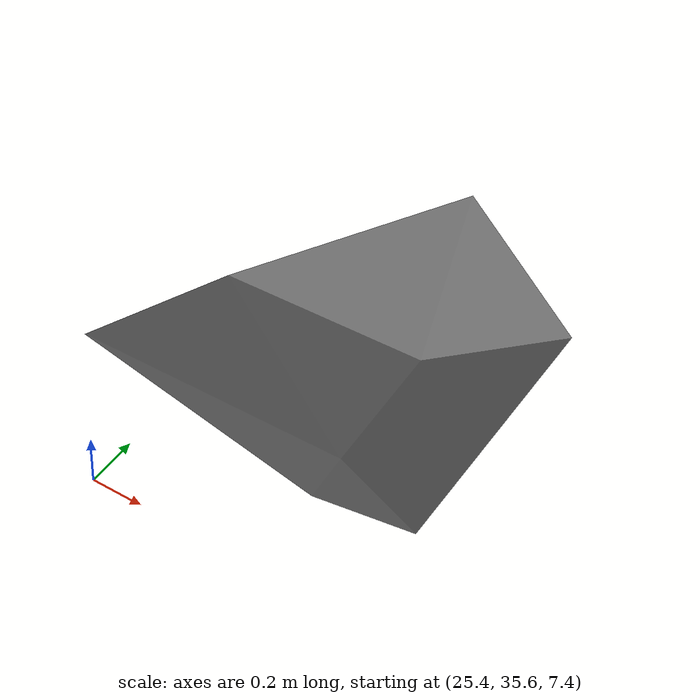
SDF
<sdf version="1.8">
 <model name="blue_mountains">
  <static>true</static>
  <link name="forest_22_23">
   <collision name="tree_212_trunk">
    <pose>26.17512 35.82392 5.798192 0 0 -1.299978</pose>
    <geometry><cylinder><radius>0.05569372</radius><length>3.544023</length></cylinder></geometry>
   </collision>
   <collision name="plant_212_crown_0">
    <pose>26.16916 35.84538 4.026181 0 0 -1.299978</pose>
    <geometry>
     <mesh>
      <uri>model://blue_mountains/meshes/canopy_6_0.dae</uri>
      <scale>0.2227749 0.2227749 0.2612376</scale>
     </mesh>
    </geometry>
   </collision>
   <collision name="plant_212_crown_1">
    <pose>26.16916 35.84538 4.026181 0 0 -1.299978</pose>
    <geometry>
     <mesh>
      <uri>model://blue_mountains/meshes/canopy_6_1.dae</uri>
      <scale>0.2227749 0.2227749 0.2612376</scale>
     </mesh>
    </geometry>
   </collision>
   <collision name="tree_286_trunk">
    <pose>29.71212 34.58313 4.189061 0 0 -2.061713</pose>
    <geometry><cylinder><radius>0.04205543</radius><length>2.102512</length></cylinder></geometry>
   </collision>
   <collision name="plant_286_crown_0">
    <pose>29.72005 34.59797 3.137805 0 0 -2.061713</pose>
    <geometry>
     <mesh>
      <uri>model://blue_mountains/meshes/canopy_1_0.dae</uri>
      <scale>0.1682217 0.1682217 0.1552932</scale>
     </mesh>
    </geometry>
   </collision>
   <collision name="plant_286_crown_1">
    <pose>29.72005 34.59797 3.137805 0 0 -2.061713</pose>
    <geometry>
     <mesh>
      <uri>model://blue_mountains/meshes/canopy_1_1.dae</uri>
      <scale>0.1682217 0.1682217 0.1552932</scale>
     </mesh>
    </geometry>
   </collision>
   <collision name="plant_508_crown_0">
    <pose>23.5262 35.47313 5.321859 0 0 0</pose>
    <geometry>
     <mesh>
      <uri>model://blue_mountains/meshes/canopy_17_0.dae</uri>
      <scale>0.07575656 0.07575656 0.06926315</scale>
     </mesh>
    </geometry>
   </collision>
   <collision name="plant_508_crown_1">
    <pose>23.5262 35.47313 5.321859 0 0 0</pose>
    <geometry>
     <mesh>
      <uri>model://blue_mountains/meshes/canopy_17_1.dae</uri>
      <scale>0.07575656 0.07575656 0.06926315</scale>
     </mesh>
    </geometry>
   </collision>
   <collision name="plant_509_crown_0">
    <pose>25.23534 36.08177 4.6944 0 0 0</pose>
    <geometry>
     <mesh>
      <uri>model://blue_mountains/meshes/canopy_15_0.dae</uri>
      <scale>0.07575656 0.07575656 0.06926315</scale>
     </mesh>
    </geometry>
   </collision>
   <collision name="plant_509_crown_1">
    <pose>25.23534 36.08177 4.6944 0 0 0</pose>
    <geometry>
     <mesh>
      <uri>model://blue_mountains/meshes/canopy_15_1.dae</uri>
      <scale>0.07575656 0.07575656 0.06926315</scale>
     </mesh>
    </geometry>
   </collision>
   <collision name="plant_747_crown_0">
    <pose>29.18143 30.86106 22.881 0 0 -1.975</pose>
    <geometry>
     <mesh>
      <uri>model://blue_mountains/meshes/canopy_10_0.dae</uri>
      <scale>0.03990971 0.03990971 0.028735</scale>
     </mesh>
    </geometry>
   </collision>
   <collision name="plant_747_crown_1">
    <pose>29.18143 30.86106 22.881 0 0 -1.975</pose>
    <geometry>
     <mesh>
      <uri>model://blue_mountains/meshes/canopy_10_1.dae</uri>
      <scale>0.03990971 0.03990971 0.028735</scale>
     </mesh>
    </geometry>
   </collision>
   <collision name="plant_758_crown_0">
    <pose>27.91028 32.0326 15.73824 0 0 1.797869</pose>
    <geometry>
     <mesh>
      <uri>model://blue_mountains/meshes/canopy_12_0.dae</uri>
      <scale>0.05852661 0.05852661 0.04213916</scale>
     </mesh>
    </geometry>
   </collision>
   <collision name="plant_758_crown_1">
    <pose>27.91028 32.0326 15.73824 0 0 1.797869</pose>
    <geometry>
     <mesh>
      <uri>model://blue_mountains/meshes/canopy_12_1.dae</uri>
      <scale>0.05852661 0.05852661 0.04213916</scale>
     </mesh>
    </geometry>
   </collision>
   <collision name="plant_759_crown_0">
    <pose>24.58041 30.78548 15.73824 0 0 -0.9606831</pose>
    <geometry>
     <mesh>
      <uri>model://blue_mountains/meshes/canopy_13_0.dae</uri>
      <scale>0.06262851 0.06262851 0.04509252</scale>
     </mesh>
    </geometry>
   </collision>
   <collision name="plant_759_crown_1">
    <pose>24.58041 30.78548 15.73824 0 0 -0.9606831</pose>
    <geometry>
     <mesh>
      <uri>model://blue_mountains/meshes/canopy_13_1.dae</uri>
      <scale>0.06262851 0.06262851 0.04509252</scale>
     </mesh>
    </geometry>
   </collision>
   <collision name="plant_761_crown_0">
    <pose>27.69383 32.0326 18.33561 0 0 0.3316886</pose>
    <geometry>
     <mesh>
      <uri>model://blue_mountains/meshes/canopy_16_0.dae</uri>
      <scale>0.0434915 0.0434915 0.03131388</scale>
     </mesh>
    </geometry>
   </collision>
   <collision name="plant_761_crown_1">
    <pose>27.69383 32.0326 18.33561 0 0 0.3316886</pose>
    <geometry>
     <mesh>
      <uri>model://blue_mountains/meshes/canopy_16_1.dae</uri>
      <scale>0.0434915 0.0434915 0.03131388</scale>
     </mesh>
    </geometry>
   </collision>
   <collision name="plant_763_crown_0">
    <pose>24.64491 30.39496 20.71653 0 0 0.7904263</pose>
    <geometry>
     <mesh>
      <uri>model://blue_mountains/meshes/canopy_15_0.dae</uri>
      <scale>0.06741365 0.06741365 0.04853782</scale>
     </mesh>
    </geometry>
   </collision>
   <collision name="plant_763_crown_1">
    <pose>24.64491 30.39496 20.71653 0 0 0.7904263</pose>
    <geometry>
     <mesh>
      <uri>model://blue_mountains/meshes/canopy_15_1.dae</uri>
      <scale>0.06741365 0.06741365 0.04853782</scale>
     </mesh>
    </geometry>
   </collision>
   <collision name="plant_765_crown_0">
    <pose>29.7338 31.70087 21.79876 0 0 0.9896924</pose>
    <geometry>
     <mesh>
      <uri>model://blue_mountains/meshes/canopy_10_0.dae</uri>
      <scale>0.06028318 0.06028318 0.04340389</scale>
     </mesh>
    </geometry>
   </collision>
   <collision name="plant_765_crown_1">
    <pose>29.7338 31.70087 21.79876 0 0 0.9896924</pose>
    <geometry>
     <mesh>
      <uri>model://blue_mountains/meshes/canopy_10_1.dae</uri>
      <scale>0.06028318 0.06028318 0.04340389</scale>
     </mesh>
    </geometry>
   </collision>
   <collision name="plant_768_crown_0">
    <pose>24.93733 30.6553 16.82048 0 0 -2.264173</pose>
    <geometry>
     <mesh>
      <uri>model://blue_mountains/meshes/canopy_13_0.dae</uri>
      <scale>0.03739824 0.03739824 0.02692674</scale>
     </mesh>
    </geometry>
   </collision>
   <collision name="plant_768_crown_1">
    <pose>24.93733 30.6553 16.82048 0 0 -2.264173</pose>
    <geometry>
     <mesh>
      <uri>model://blue_mountains/meshes/canopy_13_1.dae</uri>
      <scale>0.03739824 0.03739824 0.02692674</scale>
     </mesh>
    </geometry>
   </collision>
   <collision name="plant_769_crown_0">
    <pose>24.58041 30.78548 15.73824 0 0 2.405986</pose>
    <geometry>
     <mesh>
      <uri>model://blue_mountains/meshes/canopy_14_0.dae</uri>
      <scale>0.05892265 0.05892265 0.0424243</scale>
     </mesh>
    </geometry>
   </collision>
   <collision name="plant_769_crown_1">
    <pose>24.58041 30.78548 15.73824 0 0 2.405986</pose>
    <geometry>
     <mesh>
      <uri>model://blue_mountains/meshes/canopy_14_1.dae</uri>
      <scale>0.05892265 0.05892265 0.0424243</scale>
     </mesh>
    </geometry>
   </collision>
   <collision name="plant_771_crown_0">
    <pose>24.36396 30.78548 18.33561 0 0 -3.113648</pose>
    <geometry>
     <mesh>
      <uri>model://blue_mountains/meshes/canopy_17_0.dae</uri>
      <scale>0.04319181 0.04319181 0.03109811</scale>
     </mesh>
    </geometry>
   </collision>
   <collision name="plant_771_crown_1">
    <pose>24.36396 30.78548 18.33561 0 0 -3.113648</pose>
    <geometry>
     <mesh>
      <uri>model://blue_mountains/meshes/canopy_17_1.dae</uri>
      <scale>0.04319181 0.04319181 0.03109811</scale>
     </mesh>
    </geometry>
   </collision>
   <collision name="plant_777_crown_0">
    <pose>24.7474 30.26479 21.79876 0 0 1.098666</pose>
    <geometry>
     <mesh>
      <uri>model://blue_mountains/meshes/canopy_13_0.dae</uri>
      <scale>0.05782267 0.05782267 0.04163232</scale>
     </mesh>
    </geometry>
   </collision>
   <collision name="plant_777_crown_1">
    <pose>24.7474 30.26479 21.79876 0 0 1.098666</pose>
    <geometry>
     <mesh>
      <uri>model://blue_mountains/meshes/canopy_13_1.dae</uri>
      <scale>0.05782267 0.05782267 0.04163232</scale>
     </mesh>
    </geometry>
   </collision>
   <collision name="plant_779_crown_0">
    <pose>28.01105 31.84574 16.82048 0 0 -1.437006</pose>
    <geometry>
     <mesh>
      <uri>model://blue_mountains/meshes/canopy_16_0.dae</uri>
      <scale>0.05132083 0.05132083 0.036951</scale>
     </mesh>
    </geometry>
   </collision>
   <collision name="plant_779_crown_1">
    <pose>28.01105 31.84574 16.82048 0 0 -1.437006</pose>
    <geometry>
     <mesh>
      <uri>model://blue_mountains/meshes/canopy_16_1.dae</uri>
      <scale>0.05132083 0.05132083 0.036951</scale>
     </mesh>
    </geometry>
   </collision>
   <collision name="plant_782_crown_0">
    <pose>27.18076 31.28517 21.79876 0 0 -0.6048592</pose>
    <geometry>
     <mesh>
      <uri>model://blue_mountains/meshes/canopy_9_0.dae</uri>
      <scale>0.06758327 0.06758327 0.04865995</scale>
     </mesh>
    </geometry>
   </collision>
   <collision name="plant_782_crown_1">
    <pose>27.18076 31.28517 21.79876 0 0 -0.6048592</pose>
    <geometry>
     <mesh>
      <uri>model://blue_mountains/meshes/canopy_9_1.dae</uri>
      <scale>0.06758327 0.06758327 0.04865995</scale>
     </mesh>
    </geometry>
   </collision>
   <collision name="plant_787_crown_0">
    <pose>29.7338 31.70087 21.79876 0 0 -1.22128</pose>
    <geometry>
     <mesh>
      <uri>model://blue_mountains/meshes/canopy_14_0.dae</uri>
      <scale>0.0397453 0.0397453 0.02861661</scale>
     </mesh>
    </geometry>
   </collision>
   <collision name="plant_787_crown_1">
    <pose>29.7338 31.70087 21.79876 0 0 -1.22128</pose>
    <geometry>
     <mesh>
      <uri>model://blue_mountains/meshes/canopy_14_1.dae</uri>
      <scale>0.0397453 0.0397453 0.02861661</scale>
     </mesh>
    </geometry>
   </collision>
   <collision name="plant_788_crown_0">
    <pose>27.46249 31.47202 20.71653 0 0 2.204205</pose>
    <geometry>
     <mesh>
      <uri>model://blue_mountains/meshes/canopy_16_0.dae</uri>
      <scale>0.04044335 0.04044335 0.02911921</scale>
     </mesh>
    </geometry>
   </collision>
   <collision name="plant_788_crown_1">
    <pose>27.46249 31.47202 20.71653 0 0 2.204205</pose>
    <geometry>
     <mesh>
      <uri>model://blue_mountains/meshes/canopy_16_1.dae</uri>
      <scale>0.04044335 0.04044335 0.02911921</scale>
     </mesh>
    </geometry>
   </collision>
   <collision name="plant_792_crown_0">
    <pose>27.18076 31.28517 21.79876 0 0 -2.453559</pose>
    <geometry>
     <mesh>
      <uri>model://blue_mountains/meshes/canopy_10_0.dae</uri>
      <scale>0.04410311 0.04410311 0.03175424</scale>
     </mesh>
    </geometry>
   </collision>
   <collision name="plant_792_crown_1">
    <pose>27.18076 31.28517 21.79876 0 0 -2.453559</pose>
    <geometry>
     <mesh>
      <uri>model://blue_mountains/meshes/canopy_10_1.dae</uri>
      <scale>0.04410311 0.04410311 0.03175424</scale>
     </mesh>
    </geometry>
   </collision>
   <collision name="plant_794_crown_0">
    <pose>29.7338 31.70087 21.79876 0 0 2.602497</pose>
    <geometry>
     <mesh>
      <uri>model://blue_mountains/meshes/canopy_12_0.dae</uri>
      <scale>0.04548121 0.04548121 0.03274647</scale>
     </mesh>
    </geometry>
   </collision>
   <collision name="plant_794_crown_1">
    <pose>29.7338 31.70087 21.79876 0 0 2.602497</pose>
    <geometry>
     <mesh>
      <uri>model://blue_mountains/meshes/canopy_12_1.dae</uri>
      <scale>0.04548121 0.04548121 0.03274647</scale>
     </mesh>
    </geometry>
   </collision>
   <collision name="plant_795_crown_0">
    <pose>27.69383 32.0326 18.33561 0 0 -1.584611</pose>
    <geometry>
     <mesh>
      <uri>model://blue_mountains/meshes/canopy_13_0.dae</uri>
      <scale>0.04890751 0.04890751 0.03521341</scale>
     </mesh>
    </geometry>
   </collision>
   <collision name="plant_795_crown_1">
    <pose>27.69383 32.0326 18.33561 0 0 -1.584611</pose>
    <geometry>
     <mesh>
      <uri>model://blue_mountains/meshes/canopy_13_1.dae</uri>
      <scale>0.04890751 0.04890751 0.03521341</scale>
     </mesh>
    </geometry>
   </collision>
   <collision name="plant_796_crown_0">
    <pose>27.59305 32.40632 11.62574 0 0 0.6167309</pose>
    <geometry>
     <mesh>
      <uri>model://blue_mountains/meshes/canopy_14_0.dae</uri>
      <scale>0.06536012 0.06536012 0.04705928</scale>
     </mesh>
    </geometry>
   </collision>
   <collision name="plant_796_crown_1">
    <pose>27.59305 32.40632 11.62574 0 0 0.6167309</pose>
    <geometry>
     <mesh>
      <uri>model://blue_mountains/meshes/canopy_14_1.dae</uri>
      <scale>0.06536012 0.06536012 0.04705928</scale>
     </mesh>
    </geometry>
   </collision>
   <visual name="forest_visual">
    <geometry><mesh><uri>model://blue_mountains/meshes/forest_22_23.dae</uri></mesh></geometry>
    <cast_shadows>false</cast_shadows>
   </visual>
  </link>
 </model>
</sdf>
